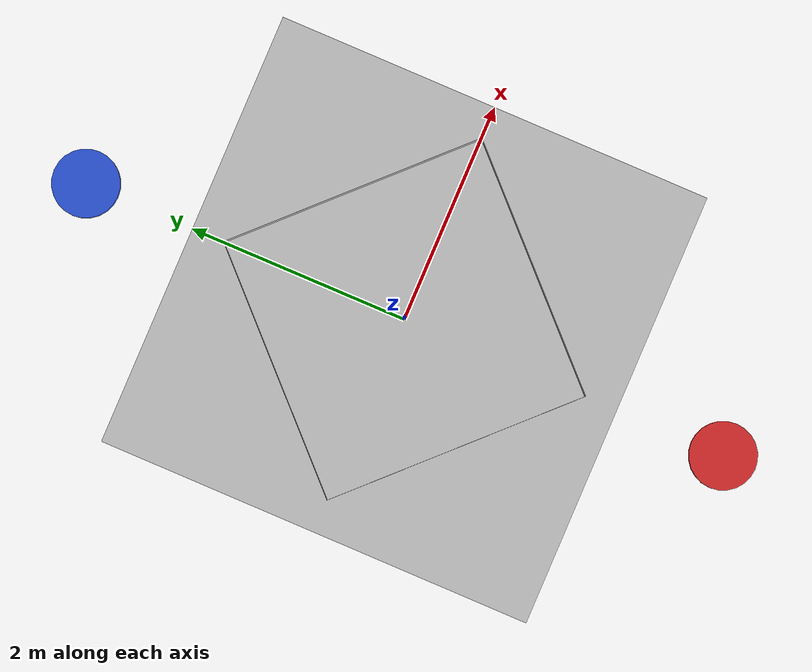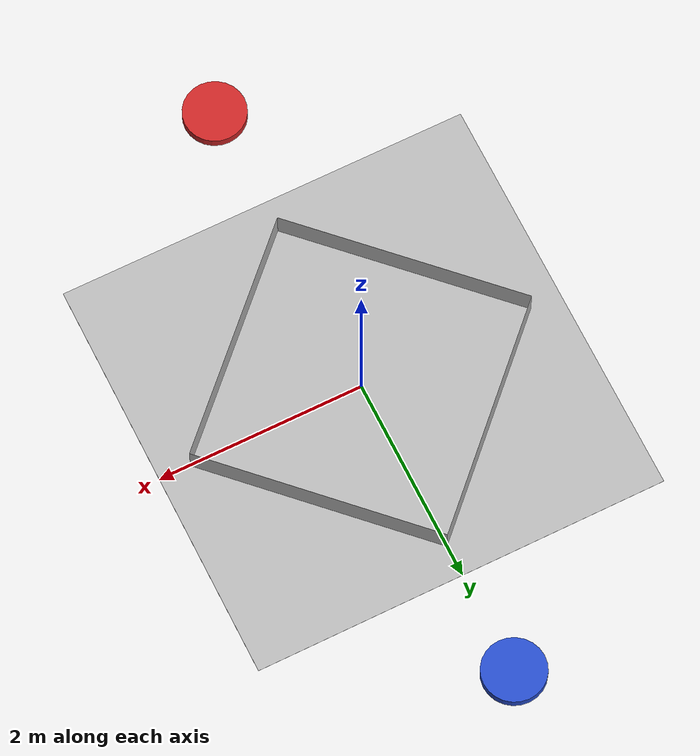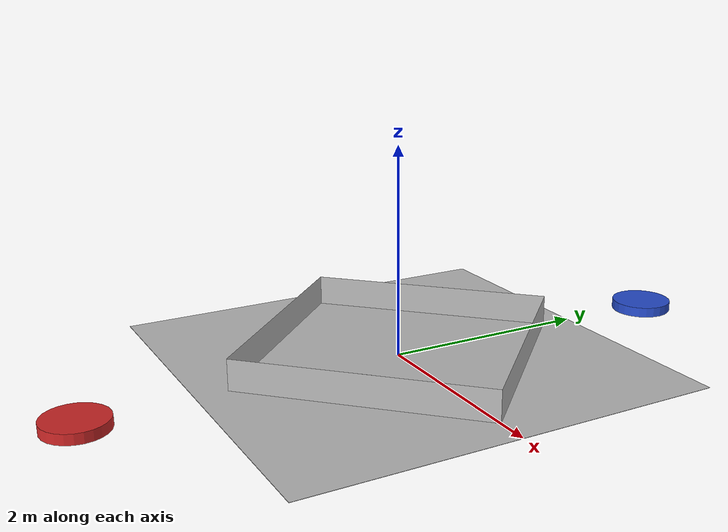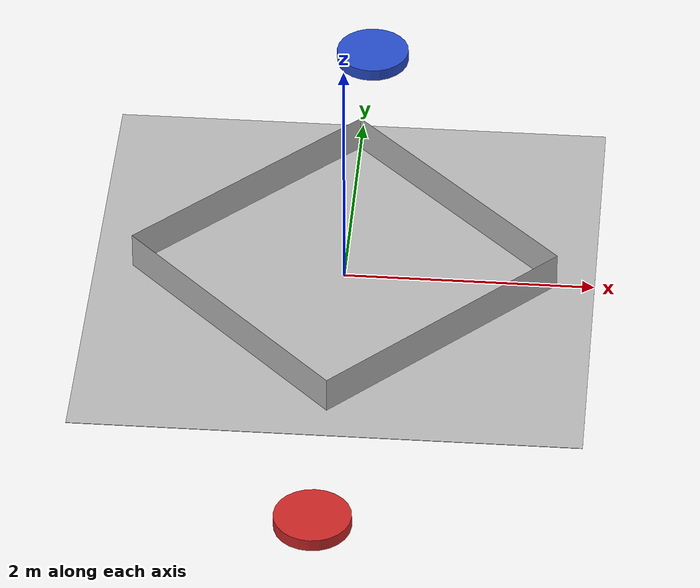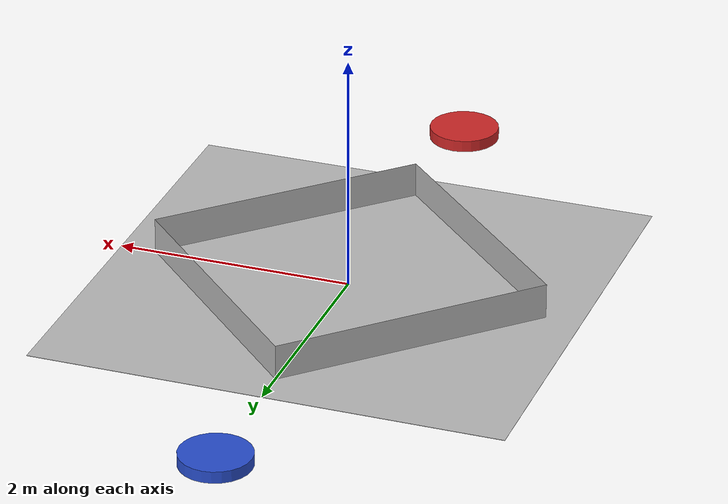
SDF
<sdf version="1.6">
 <world name="onigiri_field">
  <scene><shadows>0</shadows><ambient>0.4 0.4 0.4 1</ambient><background>0.7 0.7 0.7 1</background></scene>
  <physics name="ode_100iters" default="0" type="ode">
   <real_time_update_rate>-1</real_time_update_rate>
   <max_step_size>0.001</max_step_size>
   <real_time_factor>1</real_time_factor>
  </physics>
  <light name="sun" type="directional">
   <pose>0 0 10 0 -0 0</pose>
   <diffuse>0.8 0.8 0.8 1</diffuse>
   <specular>0.1 0.1 0.1 1</specular>
   <attenuation>
    <range>1000</range>
    <constant>0.9</constant>
    <linear>0.01</linear>
    <quadratic>0.001</quadratic>
   </attenuation>
   <direction>-0.5 0.5 -1</direction>
  </light>
  <model name="my_ground_plane">
   <static>1</static>
   <link name="link">
    <collision name="collision">
     <geometry><plane><normal>0 0 1</normal><size>4 4</size></plane></geometry>
     <surface><friction><ode><mu>100</mu><mu2>50</mu2></ode></friction></surface>
    </collision>
    <visual name="visual">
     <cast_shadows>0</cast_shadows>
     <geometry><plane><normal>0 0 1</normal><size>4 4</size></plane></geometry>
     <material>
      <script><uri>model://my_ground_plane/my_ground_plane.material</uri><name>MyGroundPlane/Image</name></script>
     </material>
    </visual>
   </link>
  </model>
  <model name="wall_1">
   <static>1</static>
   <pose>0.8485 0.8485 0.15 0 0 -0.785398</pose>
   <link name="link">
    <collision name="visual"><geometry><box><size>2.39992 0.0001 0.3</size></box></geometry></collision>
    <visual name="visual">
     <geometry><box><size>2.39992 0.0001 0.3</size></box></geometry>
     <material><script><uri>model://wall</uri><name>wall_1</name></script></material>
    </visual>
   </link>
  </model>
  <model name="wall_2">
   <static>1</static>
   <pose>0.8485 -0.8485 0.15 0 0 -2.35619</pose>
   <link name="link">
    <collision name="visual"><geometry><box><size>2.39992 0.0001 0.3</size></box></geometry></collision>
    <visual name="visual">
     <geometry><box><size>2.39992 0.0001 0.3</size></box></geometry>
     <material><script><uri>model://wall</uri><name>wall_2</name></script></material>
    </visual>
   </link>
  </model>
  <model name="wall_3">
   <static>1</static>
   <pose>-0.8485 -0.8485 0.15 0 -0 2.35619</pose>
   <link name="link">
    <collision name="visual"><geometry><box><size>2.39992 0.0001 0.3</size></box></geometry></collision>
    <visual name="visual">
     <geometry><box><size>2.39992 0.0001 0.3</size></box></geometry>
     <material><script><uri>model://wall</uri><name>wall_3</name></script></material>
    </visual>
   </link>
  </model>
  <model name="wall_4">
   <static>1</static>
   <pose>-0.8485 0.8485 0.15 0 -0 0.785398</pose>
   <link name="link">
    <collision name="visual"><geometry><box><size>2.39992 0.0001 0.3</size></box></geometry></collision>
    <visual name="visual">
     <geometry><box><size>2.39992 0.0001 0.3</size></box></geometry>
     <material><script><uri>model://wall</uri><name>wall_4</name></script></material>
    </visual>
   </link>
  </model>
  <model name="blue_maker">
   <static>1</static>
   <link name="link">
    <visual name="visual">
     <pose>0 3 0 0 -0 0</pose>
     <geometry><cylinder><radius>0.3</radius><length>0.1</length></cylinder></geometry>
     <material><script><name>Gazebo/Blue</name><uri>__default__</uri></script></material>
    </visual>
   </link>
  </model>
  <model name="red_maker">
   <static>1</static>
   <link name="link">
    <visual name="visual">
     <pose>0 -3 0 0 -0 0</pose>
     <geometry><cylinder><radius>0.3</radius><length>0.1</length></cylinder></geometry>
     <material><script><name>Gazebo/Red</name><uri>__default__</uri></script></material>
    </visual>
   </link>
  </model>
  <gravity>0 0 -9.8</gravity>
  <magnetic_field>6e-06 2.3e-05 -4.2e-05</magnetic_field>
  <atmosphere type="adiabatic"/>
  <spherical_coordinates>
   <surface_model>EARTH_WGS84</surface_model>
   <latitude_deg>0</latitude_deg>
   <longitude_deg>0</longitude_deg>
   <elevation>0</elevation>
   <heading_deg>0</heading_deg>
  </spherical_coordinates>
 </world>
</sdf>
